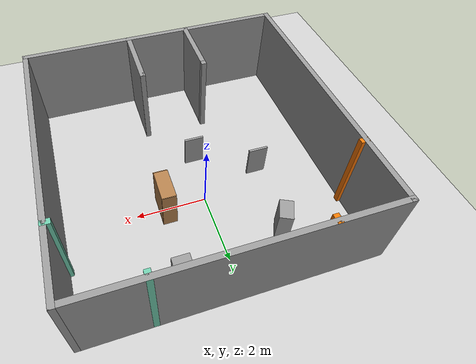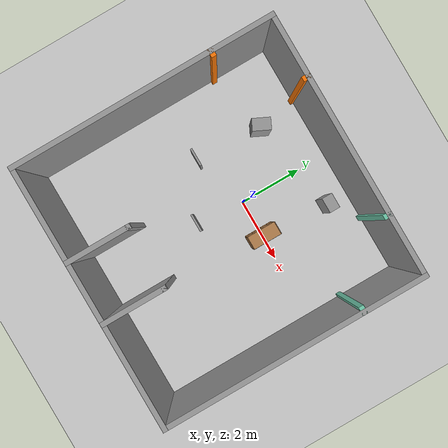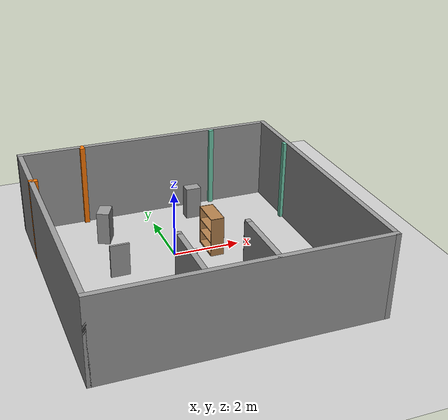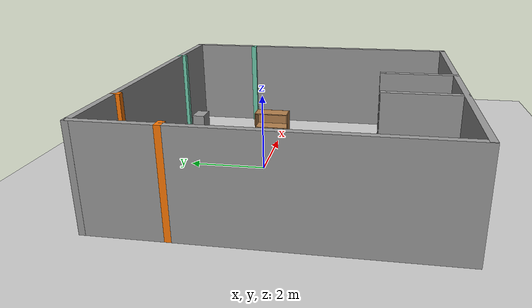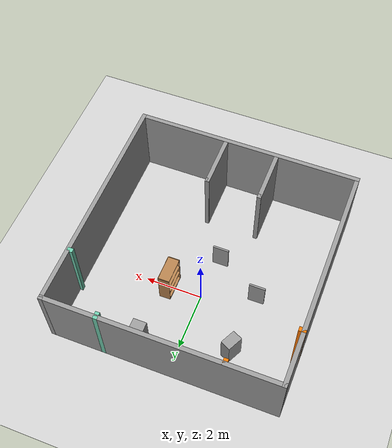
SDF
<sdf version="1.6">
 <world name="default">
  <light name="sun" type="directional">
   <pose>0 0 10 0 -0 0</pose>
   <diffuse>0.8 0.8 0.8 1</diffuse>
   <specular>0.1 0.1 0.1 1</specular>
   <attenuation>
    <range>1000</range>
    <constant>0.9</constant>
    <linear>0.01</linear>
    <quadratic>0.001</quadratic>
   </attenuation>
   <direction>-0.5 0.5 -1</direction>
  </light>
  <model name="ground_plane">
   <static>1</static>
   <link name="link">
    <collision name="collision">
     <geometry><plane><normal>0 0 1</normal><size>100 100</size></plane></geometry>
     <surface><friction><ode><mu>100</mu><mu2>50</mu2></ode></friction></surface>
    </collision>
    <visual name="visual">
     <cast_shadows>0</cast_shadows>
     <geometry><plane><normal>0 0 1</normal><size>100 100</size></plane></geometry>
     <material>
      <script><uri>file://media/materials/scripts/gazebo.material</uri><name>Gazebo/Grey</name></script>
     </material>
    </visual>
   </link>
  </model>
  <gravity>0 0 -9.8</gravity>
  <magnetic_field>6e-06 2.3e-05 -4.2e-05</magnetic_field>
  <atmosphere type="adiabatic"/>
  <physics name="default_physics" default="0" type="ode">
   <max_step_size>0.001</max_step_size>
   <real_time_factor>1</real_time_factor>
   <real_time_update_rate>1000</real_time_update_rate>
  </physics>
  <scene><ambient>0.4 0.4 0.4 1</ambient><background>0.7 0.7 0.7 1</background><shadows>1</shadows></scene>
  <spherical_coordinates>
   <surface_model>EARTH_WGS84</surface_model>
   <latitude_deg>0</latitude_deg>
   <longitude_deg>0</longitude_deg>
   <elevation>0</elevation>
   <heading_deg>0</heading_deg>
  </spherical_coordinates>
  <model name="bookshelf">
   <static>1</static>
   <link name="link">
    <inertial><mass>1</mass></inertial>
    <collision name="back">
     <pose>0 0.005 0.6 0 -0 0</pose>
     <geometry><box><size>0.9 0.01 1.2</size></box></geometry>
    </collision>
    <visual name="visual1">
     <pose>0 0.005 0.6 0 -0 0</pose>
     <geometry><box><size>0.9 0.01 1.2</size></box></geometry>
     <material>
      <script><uri>file://media/materials/scripts/gazebo.material</uri><name>Gazebo/Wood</name></script>
     </material>
    </visual>
    <collision name="left_side">
     <pose>0.45 -0.195 0.6 0 -0 0</pose>
     <geometry><box><size>0.02 0.4 1.2</size></box></geometry>
    </collision>
    <visual name="visual2">
     <pose>0.45 -0.195 0.6 0 -0 0</pose>
     <geometry><box><size>0.02 0.4 1.2</size></box></geometry>
     <material>
      <script><uri>file://media/materials/scripts/gazebo.material</uri><name>Gazebo/Wood</name></script>
     </material>
    </visual>
    <collision name="right_side">
     <pose>-0.45 -0.195 0.6 0 -0 0</pose>
     <geometry><box><size>0.02 0.4 1.2</size></box></geometry>
    </collision>
    <visual name="visual3">
     <pose>-0.45 -0.195 0.6 0 -0 0</pose>
     <geometry><box><size>0.02 0.4 1.2</size></box></geometry>
     <material>
      <script><uri>file://media/materials/scripts/gazebo.material</uri><name>Gazebo/Wood</name></script>
     </material>
    </visual>
    <collision name="bottom">
     <pose>0 -0.195 0.03 0 -0 0</pose>
     <geometry><box><size>0.88 0.4 0.06</size></box></geometry>
    </collision>
    <visual name="visual4">
     <pose>0 -0.195 0.03 0 -0 0</pose>
     <geometry><box><size>0.88 0.4 0.06</size></box></geometry>
     <material>
      <script><uri>file://media/materials/scripts/gazebo.material</uri><name>Gazebo/Wood</name></script>
     </material>
    </visual>
    <collision name="top">
     <pose>0 -0.195 1.19 0 -0 0</pose>
     <geometry><box><size>0.88 0.4 0.02</size></box></geometry>
    </collision>
    <visual name="visual5">
     <pose>0 -0.195 1.19 0 -0 0</pose>
     <geometry><box><size>0.88 0.4 0.02</size></box></geometry>
     <material>
      <script><uri>file://media/materials/scripts/gazebo.material</uri><name>Gazebo/Wood</name></script>
     </material>
    </visual>
    <collision name="low_shelf">
     <pose>0 -0.195 0.43 0 -0 0</pose>
     <geometry><box><size>0.88 0.4 0.02</size></box></geometry>
    </collision>
    <visual name="visual6">
     <pose>0 -0.195 0.43 0 -0 0</pose>
     <geometry><box><size>0.88 0.4 0.02</size></box></geometry>
     <material>
      <script><uri>file://media/materials/scripts/gazebo.material</uri><name>Gazebo/Wood</name></script>
     </material>
    </visual>
    <collision name="high_shelf">
     <pose>0 -0.195 0.8 0 -0 0</pose>
     <geometry><box><size>0.88 0.4 0.02</size></box></geometry>
    </collision>
    <visual name="visual7">
     <pose>0 -0.195 0.8 0 -0 0</pose>
     <geometry><box><size>0.88 0.4 0.02</size></box></geometry>
     <material>
      <script><uri>file://media/materials/scripts/gazebo.material</uri><name>Gazebo/Wood</name></script>
     </material>
    </visual>
   </link>
   <pose>1.34571 -0.008276 0 0 0 -1.5707</pose>
  </model>
  <model name="unit_box">
   <pose>-0.149094 -1.5081 0.499991 0 -2e-06 -9.5e-05</pose>
   <link name="link">
    <inertial>
     <mass>1</mass>
     <inertia>
      <ixx>0.166667</ixx>
      <ixy>0</ixy>
      <ixz>0</ixz>
      <iyy>0.166667</iyy>
      <iyz>0</iyz>
      <izz>0.166667</izz>
     </inertia>
    </inertial>
    <collision name="collision"><geometry><box><size>0.561753 0.063206 1</size></box></geometry></collision>
    <visual name="visual">
     <geometry><box><size>0.561753 0.063206 1</size></box></geometry>
     <material>
      <script><name>Gazebo/Grey</name><uri>file://media/materials/scripts/gazebo.material</uri></script>
     </material>
    </visual>
   </link>
  </model>
  <model name="unit_box_clone">
   <pose>-1.79888 -0.555749 0.499999 0 -3e-06 -7e-05</pose>
   <link name="link">
    <inertial>
     <mass>1</mass>
     <inertia>
      <ixx>0.166667</ixx>
      <ixy>0</ixy>
      <ixz>0</ixz>
      <iyy>0.166667</iyy>
      <iyz>0</iyz>
      <izz>0.166667</izz>
     </inertia>
    </inertial>
    <collision name="collision"><geometry><box><size>0.561753 0.063206 1</size></box></geometry></collision>
    <visual name="visual">
     <geometry><box><size>0.561753 0.063206 1</size></box></geometry>
     <material>
      <script><name>Gazebo/Grey</name><uri>file://media/materials/scripts/gazebo.material</uri></script>
     </material>
    </visual>
   </link>
  </model>
  <model name="unit_box_clone_0">
   <pose>-1.66324 1.56945 0.500001 2e-06 -1e-06 1.11865</pose>
   <link name="link">
    <inertial>
     <mass>1</mass>
     <inertia>
      <ixx>0.166667</ixx>
      <ixy>0</ixy>
      <ixz>0</ixz>
      <iyy>0.166667</iyy>
      <iyz>0</iyz>
      <izz>0.166667</izz>
     </inertia>
    </inertial>
    <collision name="collision"><geometry><box><size>0.561753 0.374185 1</size></box></geometry></collision>
    <visual name="visual">
     <geometry><box><size>0.561753 0.374185 1</size></box></geometry>
     <material>
      <script><name>Gazebo/Grey</name><uri>file://media/materials/scripts/gazebo.material</uri></script>
     </material>
    </visual>
   </link>
  </model>
  <model name="unit_box_0">
   <pose>1.32424 2.14642 0.499999 -2e-06 4e-06 -0.000169</pose>
   <link name="link">
    <inertial>
     <mass>1</mass>
     <inertia>
      <ixx>0.166667</ixx>
      <ixy>0</ixy>
      <ixz>0</ixz>
      <iyy>0.166667</iyy>
      <iyz>0</iyz>
      <izz>0.166667</izz>
     </inertia>
    </inertial>
    <collision name="collision"><geometry><box><size>0.471916 0.329493 1</size></box></geometry></collision>
    <visual name="visual">
     <geometry><box><size>0.471916 0.329493 1</size></box></geometry>
     <material>
      <script><name>Gazebo/Grey</name><uri>file://media/materials/scripts/gazebo.material</uri></script>
     </material>
    </visual>
   </link>
  </model>
  <model name="EP4">
   <pose>0.151085 -0.940244 0 0 -0 0</pose>
   <link name="Wall_10">
    <collision name="Wall_10_Collision">
     <geometry><box><size>8 0.15 2.5</size></box></geometry>
     <pose>0 0 1.25 0 -0 0</pose>
    </collision>
    <visual name="Wall_10_Visual">
     <pose>0 0 1.25 0 -0 0</pose>
     <geometry><box><size>8 0.15 2.5</size></box></geometry>
     <material>
      <script><uri>file://media/materials/scripts/gazebo.material</uri><name>Gazebo/Grey</name></script>
      <ambient>1 1 1 1</ambient>
     </material>
     <meta><layer>0</layer></meta>
    </visual>
    <pose>-3.925 0 0 0 0 -1.5708</pose>
   </link>
   <link name="Wall_18">
    <collision name="Wall_18_Collision">
     <geometry><box><size>1.9847 0.15 2.5</size></box></geometry>
     <pose>0 0 1.25 0 -0 0</pose>
    </collision>
    <visual name="Wall_18_Visual">
     <pose>0 0 1.25 0 -0 0</pose>
     <geometry><box><size>1.9847 0.15 2.5</size></box></geometry>
     <material>
      <script><uri>file://media/materials/scripts/gazebo.material</uri><name>Gazebo/Grey</name></script>
      <ambient>1 1 1 1</ambient>
     </material>
     <meta><layer>0</layer></meta>
    </visual>
    <pose>-1.07547 -3.0072 0 0 -0 1.5708</pose>
   </link>
   <link name="Wall_20">
    <collision name="Wall_20_Collision">
     <geometry><box><size>1.9847 0.15 2.5</size></box></geometry>
     <pose>0 0 1.25 0 -0 0</pose>
    </collision>
    <visual name="Wall_20_Visual">
     <pose>0 0 1.25 0 -0 0</pose>
     <geometry><box><size>1.9847 0.15 2.5</size></box></geometry>
     <material>
      <script><uri>file://media/materials/scripts/gazebo.material</uri><name>Gazebo/Grey</name></script>
      <ambient>1 1 1 1</ambient>
     </material>
     <meta><layer>0</layer></meta>
    </visual>
    <pose>0.774529 -3.0072 0 0 0 -1.5708</pose>
   </link>
   <link name="Wall_3">
    <collision name="Wall_3_Collision">
     <geometry><box><size>8 0.15 2.5</size></box></geometry>
     <pose>0 0 1.25 0 -0 0</pose>
    </collision>
    <visual name="Wall_3_Visual">
     <pose>0 0 1.25 0 -0 0</pose>
     <geometry><box><size>8 0.15 2.5</size></box></geometry>
     <material>
      <script><uri>file://media/materials/scripts/gazebo.material</uri><name>Gazebo/Grey</name></script>
      <ambient>1 1 1 1</ambient>
     </material>
     <meta><layer>0</layer></meta>
    </visual>
    <pose>0 -3.925 0 0 -0 0</pose>
   </link>
   <link name="Wall_33">
    <collision name="Wall_33_Collision">
     <geometry><box><size>0.25 0.15 2.5</size></box></geometry>
     <pose>0 0 1.25 0 -0 0</pose>
    </collision>
    <visual name="Wall_33_Visual">
     <pose>0 0 1.25 0 -0 0</pose>
     <geometry><box><size>0.25 0.15 2.5</size></box></geometry>
     <material>
      <script><uri>file://media/materials/scripts/gazebo.material</uri><name>Gazebo/Grey</name></script>
      <ambient>0.996078 0.47451 0.0196078 1</ambient>
     </material>
     <meta><layer>0</layer></meta>
    </visual>
    <pose>-2.075 3.875 0 0 0 -1.5708</pose>
   </link>
   <link name="Wall_38">
    <collision name="Wall_38_Collision">
     <geometry><box><size>0.25 0.15 2.5</size></box></geometry>
     <pose>0 0 1.25 0 -0 0</pose>
    </collision>
    <visual name="Wall_38_Visual">
     <pose>0 0 1.25 0 -0 0</pose>
     <geometry><box><size>0.25 0.15 2.5</size></box></geometry>
     <material>
      <script><uri>file://media/materials/scripts/gazebo.material</uri><name>Gazebo/Grey</name></script>
      <ambient>0.996078 0.47451 0.0196078 1</ambient>
     </material>
     <meta><layer>0</layer></meta>
    </visual>
    <pose>-3.875 2.075 0 0 -0 0</pose>
   </link>
   <link name="Wall_4">
    <collision name="Wall_4_Collision">
     <geometry><box><size>8.00006 0.15 2.5</size></box></geometry>
     <pose>0 0 1.25 0 -0 0</pose>
    </collision>
    <visual name="Wall_4_Visual">
     <pose>0 0 1.25 0 -0 0</pose>
     <geometry><box><size>8.00006 0.15 2.5</size></box></geometry>
     <material>
      <script><uri>file://media/materials/scripts/gazebo.material</uri><name>Gazebo/Grey</name></script>
      <ambient>1 1 1 1</ambient>
     </material>
     <meta><layer>0</layer></meta>
    </visual>
    <pose>3.925 0 0 0 -0 1.5708</pose>
   </link>
   <link name="Wall_41">
    <collision name="Wall_41_Collision">
     <geometry><box><size>0.25 0.15 2.5</size></box></geometry>
     <pose>0 0 1.25 0 -0 0</pose>
    </collision>
    <visual name="Wall_41_Visual">
     <pose>0 0 1.25 0 -0 0</pose>
     <geometry><box><size>0.25 0.15 2.5</size></box></geometry>
     <material>
      <script><uri>file://media/materials/scripts/gazebo.material</uri><name>Gazebo/Grey</name></script>
      <ambient>0.435294 0.796078 0.67451 1</ambient>
     </material>
     <meta><layer>0</layer></meta>
    </visual>
    <pose>2.075 3.875 0 0 0 -1.5708</pose>
   </link>
   <link name="Wall_44">
    <collision name="Wall_44_Collision">
     <geometry><box><size>0.25 0.15 2.5</size></box></geometry>
     <pose>0 0 1.25 0 -0 0</pose>
    </collision>
    <visual name="Wall_44_Visual">
     <pose>0 0 1.25 0 -0 0</pose>
     <geometry><box><size>0.25 0.15 2.5</size></box></geometry>
     <material>
      <script><uri>file://media/materials/scripts/gazebo.material</uri><name>Gazebo/Grey</name></script>
      <ambient>0.435294 0.796078 0.67451 1</ambient>
     </material>
     <meta><layer>0</layer></meta>
    </visual>
    <pose>3.875 2.075 0 0 -0 3.14159</pose>
   </link>
   <link name="Wall_46">
    <pose>-0.150471 -2.0822 0 0 -0 0</pose>
    <visual name="Wall_46_Visual_0">
     <pose>-0.924369 0 1.25 0 -0 0</pose>
     <geometry><box><size>0.151261 0.15 2.5</size></box></geometry>
     <material>
      <script><uri>file://media/materials/scripts/gazebo.material</uri><name>Gazebo/Grey</name></script>
      <ambient>1 1 1 1</ambient>
     </material>
     <meta><layer>0</layer></meta>
    </visual>
    <collision name="Wall_46_Collision_0">
     <geometry><box><size>0.151261 0.15 2.5</size></box></geometry>
     <pose>-0.924369 0 1.25 0 -0 0</pose>
    </collision>
    <visual name="Wall_46_Visual_1">
     <pose>0.925631 0 1.25 0 -0 0</pose>
     <geometry><box><size>0.148739 0.15 2.5</size></box></geometry>
     <material>
      <script><uri>file://media/materials/scripts/gazebo.material</uri><name>Gazebo/Grey</name></script>
      <ambient>1 1 1 1</ambient>
     </material>
     <meta><layer>0</layer></meta>
    </visual>
    <collision name="Wall_46_Collision_1">
     <geometry><box><size>0.148739 0.15 2.5</size></box></geometry>
     <pose>0.925631 0 1.25 0 -0 0</pose>
    </collision>
   </link>
   <link name="Wall_9">
    <collision name="Wall_9_Collision">
     <geometry><box><size>8 0.15 2.5</size></box></geometry>
     <pose>0 0 1.25 0 -0 0</pose>
    </collision>
    <visual name="Wall_9_Visual">
     <pose>0 0 1.25 0 -0 0</pose>
     <geometry><box><size>8 0.15 2.5</size></box></geometry>
     <material>
      <script><uri>file://media/materials/scripts/gazebo.material</uri><name>Gazebo/Grey</name></script>
      <ambient>1 1 1 1</ambient>
     </material>
     <meta><layer>0</layer></meta>
    </visual>
    <pose>0 3.925 0 0 -0 3.14159</pose>
   </link>
   <static>1</static>
  </model>
 </world>
</sdf>
